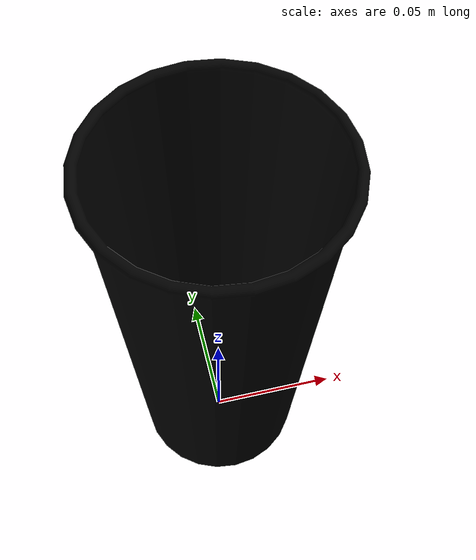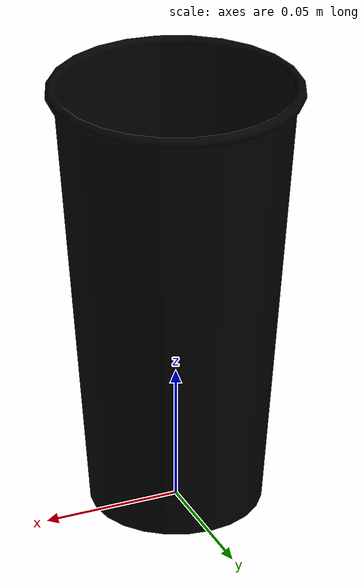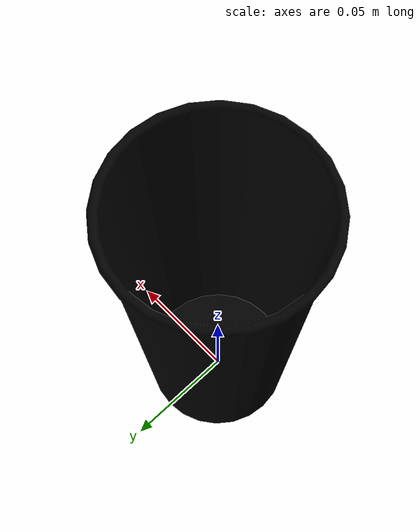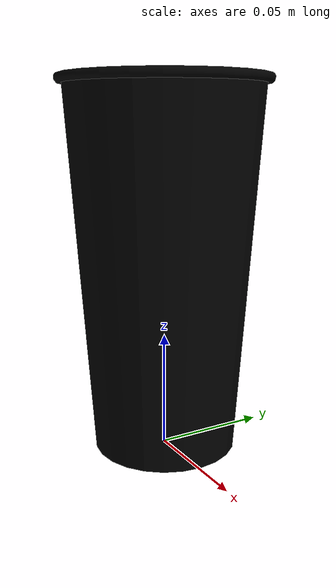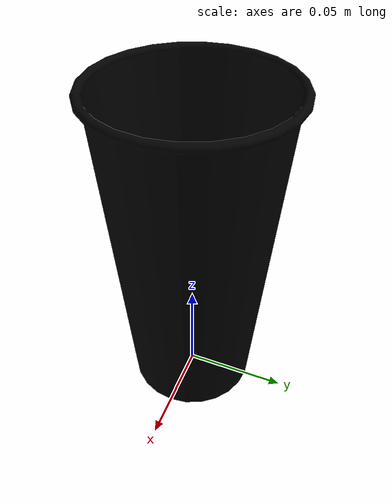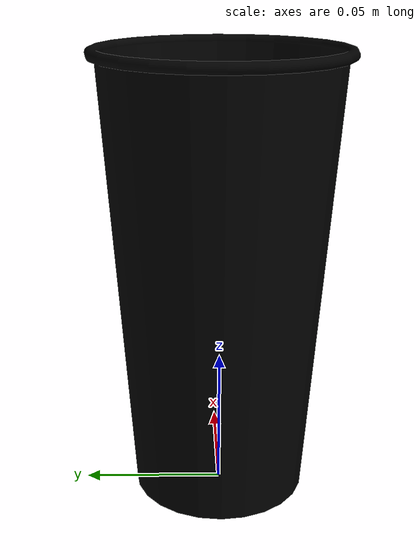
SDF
<?xml version="1.0" ?>
<sdf version="1.5">
<model name="ica_cup_filled">
    <link name="Cup-Body">
      <inertial>
	      <pose>0.0 0.0 0.1 0 0 0</pose>
        <inertia>
          <ixx>0.0003</ixx>
          <ixy>0</ixy>
          <ixz>0</ixz>
          <iyy>0.0003</iyy>
          <iyz>0</iyz>
          <izz>0.0001</izz>
        </inertia>
      </inertial>
      <collision name="collision">
	      <pose>0 0 0.075 0 0 0</pose>
        <geometry>
          <cylinder>
            <radius>0.04</radius>
            <length>0.15</length>
          </cylinder>
        </geometry>
        <surface>
          <friction>
            <ode>
              <mu>1</mu>
              <mu2>1</mu2>
              <slip1>1</slip1>
              <slip2>1</slip2>
            </ode>
          </friction>
          <contact>
            <ode>
              <kp>10000000.0</kp>
              <kd>1.0</kd>
              <min_depth>0.003</min_depth>
              <max_vel>0.01</max_vel>
            </ode>
          </contact>
        </surface>
      </collision>
      <visual name="visual">
        <material>
            <ambient>0 0 0 1</ambient>
            <diffuse>0 0 0 1</diffuse>
            <specular>0 0 0 0</specular>
            <emissive>0.82 0.24 0.05 1</emissive>
        </material>
	      <pose>0 0 0 0 0 0</pose>
        <geometry>
          <mesh>
            <uri>model://ica_cup/meshes/ica_cup.dae</uri>
          </mesh>
        </geometry>
      </visual>
    </link>
    <plugin name="cup_plugin" filename="libsim_cup_plugin.so">
      <notificatie_Interval> 1 </notificatie_Interval> <!-- interval used for sending info messages. 0 means every simulation tick, if update_Interval is set higher update_Interval will be used as Notification_interval-->
      <update_Interval> 0 </update_Interval>
      <warning_Interval> 2 </warning_Interval> <!--Pleas dont spam the error message constantly ?-->
      <cupHeight> 8 </cupHeight> <!--CM-->
      <cupWidthBottom> 4.9 </cupWidthBottom> <!--CM-->
      <cupWidthTop> 4.9 </cupWidthTop> <!--CM-->
      <cupWeight> 8 </cupWeight> <!--Gram-->
      <cupVolumeOfLiquid> 50 </cupVolumeOfLiquid> <!--ml-->
      <!-- 2.5*2.5*pi(3.14) * 8 = 157 ml-->
    </plugin>
  </model>
</sdf>
